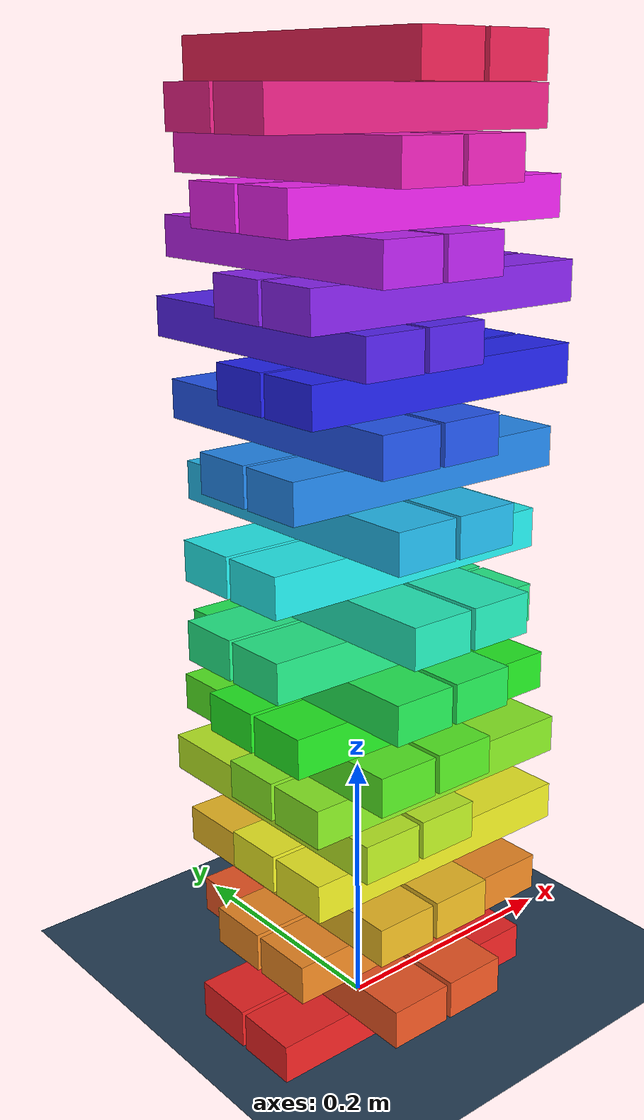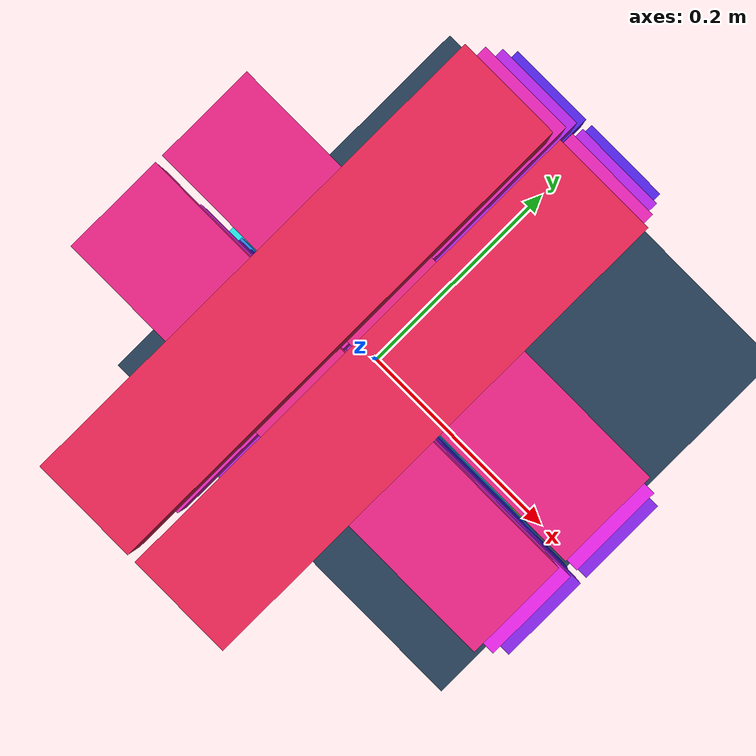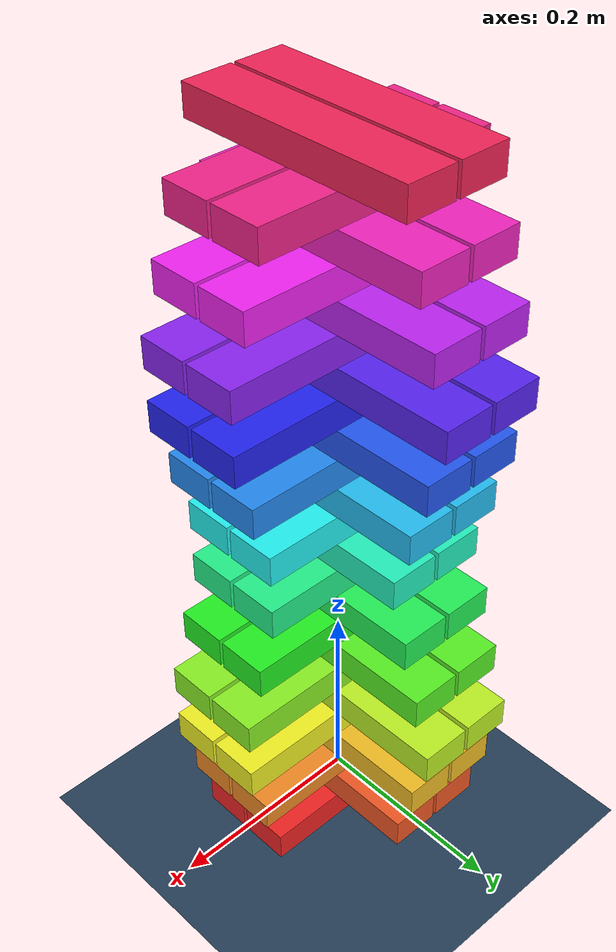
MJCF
<mujoco>
  <visual>
    <headlight diffuse="0.6 0.6 0.6" ambient="0.1 0.1 0.1" specular="0 0 0"/>
    <rgba haze="0.15 0.25 0.35 1"/>
    <global azimuth="120" elevation="-20"/>
  </visual>
  <asset>
    <texture type="skybox" builtin="gradient" rgb1="0.3 0.5 0.7" rgb2="0 0 0" width="512" height="3072"/>
    <texture type="2d" name="groundplane" builtin="checker" mark="edge" rgb1="0.2 0.3 0.4" rgb2="0.1 0.2 0.3" markrgb="0.8 0.8 0.8" width="300" height="300"/>
    <material name="groundplane" texture="groundplane" texuniform="true" texrepeat="5 5" reflectance="0.2"/>
  </asset>
  <worldbody>
    <light pos="0 0 1.5" dir="0 0 -1" directional="true"/>
    <geom name="floor" size="0 0 0.05" type="plane" material="groundplane"/>
    <body pos="0.0080 -0.0270 0.0150">
      <geom type="box" size="0.1200 0.0250 0.0150" rgba="0.950 0.143 0.143 1"/>
      <freejoint/>
    </body>
    <body pos="0.0080 0.0270 0.0150">
      <geom type="box" size="0.1200 0.0250 0.0150" rgba="0.950 0.143 0.143 1"/>
      <freejoint/>
    </body>
    <body pos="-0.0270 0.0160 0.0450">
      <geom type="box" size="0.0250 0.1200 0.0150" rgba="0.950 0.344 0.143 1"/>
      <freejoint/>
    </body>
    <body pos="0.0270 0.0160 0.0450">
      <geom type="box" size="0.0250 0.1200 0.0150" rgba="0.950 0.344 0.143 1"/>
      <freejoint/>
    </body>
    <body pos="0.0240 -0.0270 0.0750">
      <geom type="box" size="0.1200 0.0250 0.0150" rgba="0.950 0.546 0.143 1"/>
      <freejoint/>
    </body>
    <body pos="0.0240 0.0270 0.0750">
      <geom type="box" size="0.1200 0.0250 0.0150" rgba="0.950 0.546 0.143 1"/>
      <freejoint/>
    </body>
    <body pos="-0.0270 0.0320 0.1050">
      <geom type="box" size="0.0250 0.1200 0.0150" rgba="0.950 0.748 0.143 1"/>
      <freejoint/>
    </body>
    <body pos="0.0270 0.0320 0.1050">
      <geom type="box" size="0.0250 0.1200 0.0150" rgba="0.950 0.748 0.143 1"/>
      <freejoint/>
    </body>
    <body pos="0.0400 -0.0270 0.1350">
      <geom type="box" size="0.1200 0.0250 0.0150" rgba="0.950 0.950 0.143 1"/>
      <freejoint/>
    </body>
    <body pos="0.0400 0.0270 0.1350">
      <geom type="box" size="0.1200 0.0250 0.0150" rgba="0.950 0.950 0.143 1"/>
      <freejoint/>
    </body>
    <body pos="-0.0270 0.0480 0.1650">
      <geom type="box" size="0.0250 0.1200 0.0150" rgba="0.748 0.950 0.143 1"/>
      <freejoint/>
    </body>
    <body pos="0.0270 0.0480 0.1650">
      <geom type="box" size="0.0250 0.1200 0.0150" rgba="0.748 0.950 0.143 1"/>
      <freejoint/>
    </body>
    <body pos="0.0400 -0.0270 0.1950">
      <geom type="box" size="0.1200 0.0250 0.0150" rgba="0.546 0.950 0.143 1"/>
      <freejoint/>
    </body>
    <body pos="0.0400 0.0270 0.1950">
      <geom type="box" size="0.1200 0.0250 0.0150" rgba="0.546 0.950 0.143 1"/>
      <freejoint/>
    </body>
    <body pos="-0.0270 0.0320 0.2250">
      <geom type="box" size="0.0250 0.1200 0.0150" rgba="0.344 0.950 0.143 1"/>
      <freejoint/>
    </body>
    <body pos="0.0270 0.0320 0.2250">
      <geom type="box" size="0.0250 0.1200 0.0150" rgba="0.344 0.950 0.143 1"/>
      <freejoint/>
    </body>
    <body pos="0.0240 -0.0270 0.2550">
      <geom type="box" size="0.1200 0.0250 0.0150" rgba="0.143 0.950 0.143 1"/>
      <freejoint/>
    </body>
    <body pos="0.0240 0.0270 0.2550">
      <geom type="box" size="0.1200 0.0250 0.0150" rgba="0.143 0.950 0.143 1"/>
      <freejoint/>
    </body>
    <body pos="-0.0270 0.0160 0.2850">
      <geom type="box" size="0.0250 0.1200 0.0150" rgba="0.143 0.950 0.344 1"/>
      <freejoint/>
    </body>
    <body pos="0.0270 0.0160 0.2850">
      <geom type="box" size="0.0250 0.1200 0.0150" rgba="0.143 0.950 0.344 1"/>
      <freejoint/>
    </body>
    <body pos="0.0080 -0.0270 0.3150">
      <geom type="box" size="0.1200 0.0250 0.0150" rgba="0.143 0.950 0.546 1"/>
      <freejoint/>
    </body>
    <body pos="0.0080 0.0270 0.3150">
      <geom type="box" size="0.1200 0.0250 0.0150" rgba="0.143 0.950 0.546 1"/>
      <freejoint/>
    </body>
    <body pos="-0.0270 0.0000 0.3450">
      <geom type="box" size="0.0250 0.1200 0.0150" rgba="0.143 0.950 0.748 1"/>
      <freejoint/>
    </body>
    <body pos="0.0270 0.0000 0.3450">
      <geom type="box" size="0.0250 0.1200 0.0150" rgba="0.143 0.950 0.748 1"/>
      <freejoint/>
    </body>
    <body pos="0.0080 -0.0270 0.3750">
      <geom type="box" size="0.1200 0.0250 0.0150" rgba="0.143 0.950 0.950 1"/>
      <freejoint/>
    </body>
    <body pos="0.0080 0.0270 0.3750">
      <geom type="box" size="0.1200 0.0250 0.0150" rgba="0.143 0.950 0.950 1"/>
      <freejoint/>
    </body>
    <body pos="-0.0270 0.0160 0.4050">
      <geom type="box" size="0.0250 0.1200 0.0150" rgba="0.143 0.748 0.950 1"/>
      <freejoint/>
    </body>
    <body pos="0.0270 0.0160 0.4050">
      <geom type="box" size="0.0250 0.1200 0.0150" rgba="0.143 0.748 0.950 1"/>
      <freejoint/>
    </body>
    <body pos="0.0240 -0.0270 0.4350">
      <geom type="box" size="0.1200 0.0250 0.0150" rgba="0.143 0.546 0.950 1"/>
      <freejoint/>
    </body>
    <body pos="0.0240 0.0270 0.4350">
      <geom type="box" size="0.1200 0.0250 0.0150" rgba="0.143 0.546 0.950 1"/>
      <freejoint/>
    </body>
    <body pos="-0.0270 0.0320 0.4650">
      <geom type="box" size="0.0250 0.1200 0.0150" rgba="0.143 0.344 0.950 1"/>
      <freejoint/>
    </body>
    <body pos="0.0270 0.0320 0.4650">
      <geom type="box" size="0.0250 0.1200 0.0150" rgba="0.143 0.344 0.950 1"/>
      <freejoint/>
    </body>
    <body pos="0.0400 -0.0270 0.4950">
      <geom type="box" size="0.1200 0.0250 0.0150" rgba="0.143 0.143 0.950 1"/>
      <freejoint/>
    </body>
    <body pos="0.0400 0.0270 0.4950">
      <geom type="box" size="0.1200 0.0250 0.0150" rgba="0.143 0.143 0.950 1"/>
      <freejoint/>
    </body>
    <body pos="-0.0270 0.0480 0.5250">
      <geom type="box" size="0.0250 0.1200 0.0150" rgba="0.344 0.143 0.950 1"/>
      <freejoint/>
    </body>
    <body pos="0.0270 0.0480 0.5250">
      <geom type="box" size="0.0250 0.1200 0.0150" rgba="0.344 0.143 0.950 1"/>
      <freejoint/>
    </body>
    <body pos="0.0400 -0.0270 0.5550">
      <geom type="box" size="0.1200 0.0250 0.0150" rgba="0.546 0.143 0.950 1"/>
      <freejoint/>
    </body>
    <body pos="0.0400 0.0270 0.5550">
      <geom type="box" size="0.1200 0.0250 0.0150" rgba="0.546 0.143 0.950 1"/>
      <freejoint/>
    </body>
    <body pos="-0.0270 0.0320 0.5850">
      <geom type="box" size="0.0250 0.1200 0.0150" rgba="0.748 0.143 0.950 1"/>
      <freejoint/>
    </body>
    <body pos="0.0270 0.0320 0.5850">
      <geom type="box" size="0.0250 0.1200 0.0150" rgba="0.748 0.143 0.950 1"/>
      <freejoint/>
    </body>
    <body pos="0.0240 -0.0270 0.6150">
      <geom type="box" size="0.1200 0.0250 0.0150" rgba="0.950 0.143 0.950 1"/>
      <freejoint/>
    </body>
    <body pos="0.0240 0.0270 0.6150">
      <geom type="box" size="0.1200 0.0250 0.0150" rgba="0.950 0.143 0.950 1"/>
      <freejoint/>
    </body>
    <body pos="-0.0270 0.0160 0.6450">
      <geom type="box" size="0.0250 0.1200 0.0150" rgba="0.950 0.143 0.748 1"/>
      <freejoint/>
    </body>
    <body pos="0.0270 0.0160 0.6450">
      <geom type="box" size="0.0250 0.1200 0.0150" rgba="0.950 0.143 0.748 1"/>
      <freejoint/>
    </body>
    <body pos="0.0080 -0.0270 0.6750">
      <geom type="box" size="0.1200 0.0250 0.0150" rgba="0.950 0.143 0.546 1"/>
      <freejoint/>
    </body>
    <body pos="0.0080 0.0270 0.6750">
      <geom type="box" size="0.1200 0.0250 0.0150" rgba="0.950 0.143 0.546 1"/>
      <freejoint/>
    </body>
    <body pos="-0.0270 0.0000 0.7050">
      <geom type="box" size="0.0250 0.1200 0.0150" rgba="0.950 0.143 0.344 1"/>
      <freejoint/>
    </body>
    <body pos="0.0270 0.0000 0.7050">
      <geom type="box" size="0.0250 0.1200 0.0150" rgba="0.950 0.143 0.344 1"/>
      <freejoint/>
    </body>
  </worldbody>
</mujoco>
